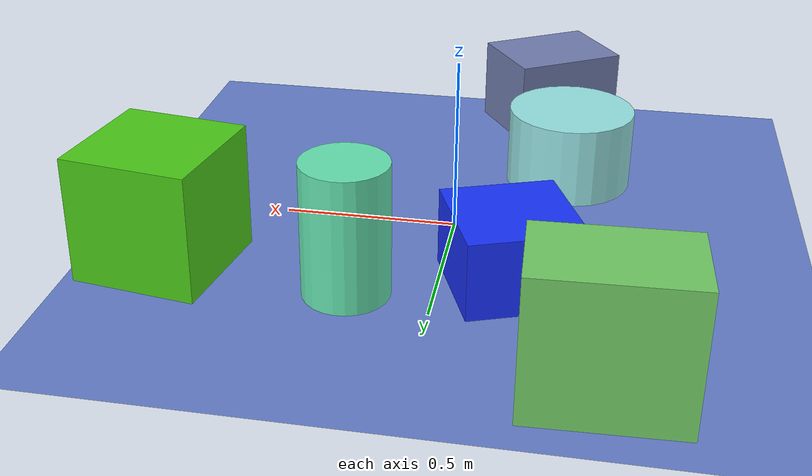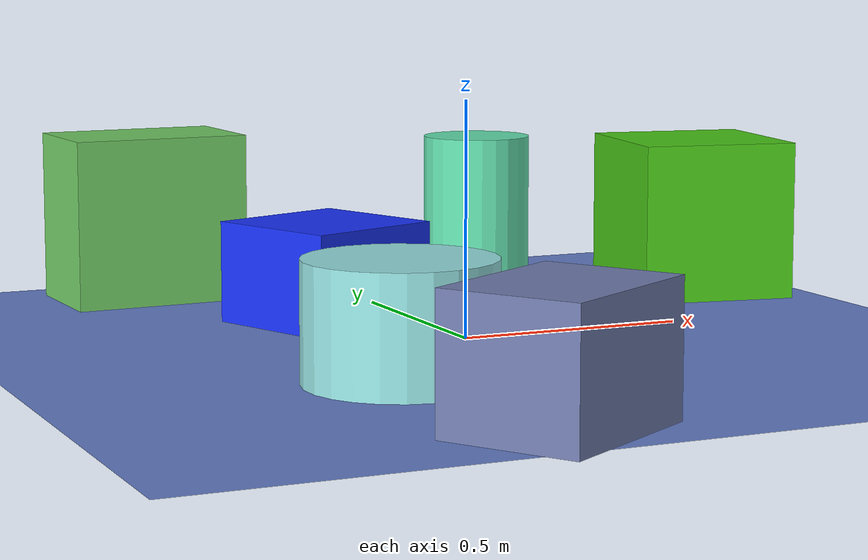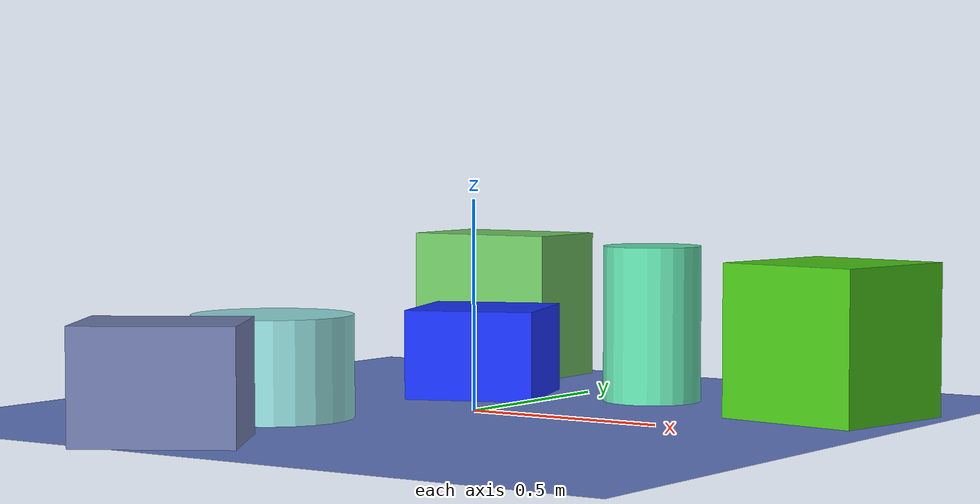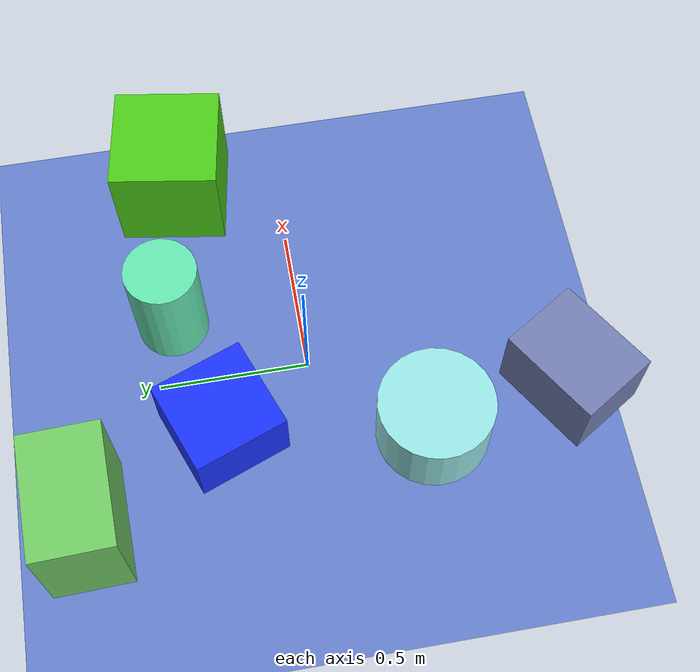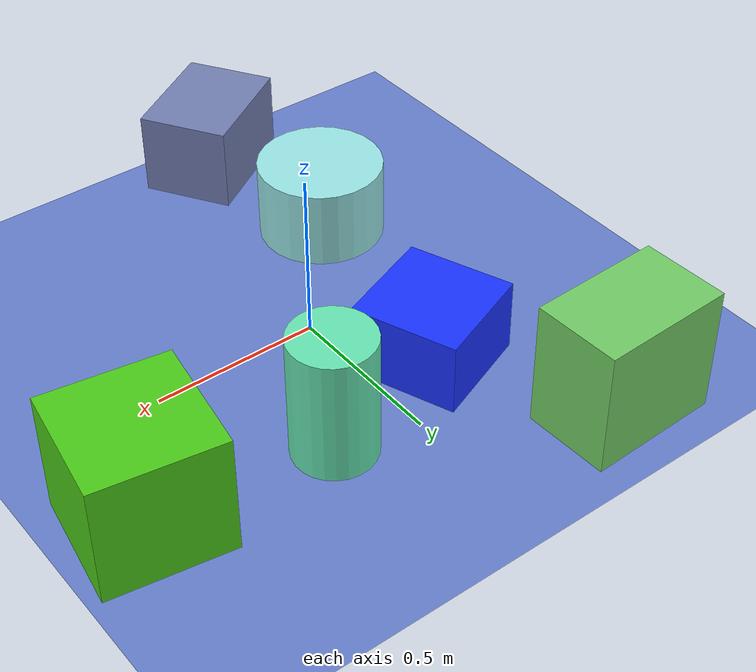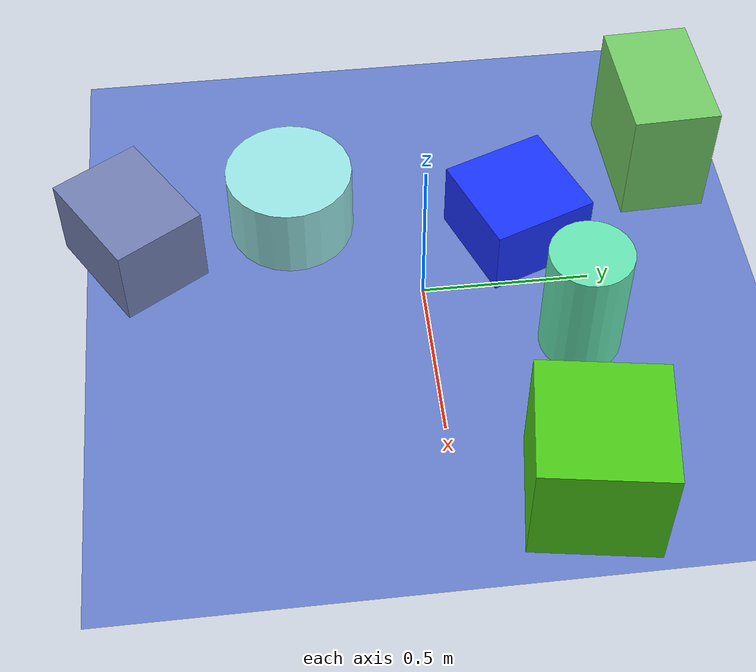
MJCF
<mujoco>
   <asset>
<texture type="skybox" builtin="gradient" rgb1="0.9 0.1 0.6" rgb2="0.3 0.4 1.0" width="500" height="500"/>
<texture name="checker_0" builtin="checker" rgb1="0.8 0.2 0.4" rgb2="0.1 0.8 1.0" width="500" height="500"/>
<texture name="flat_1" builtin="flat" rgb1="0.3 0.8 0.1" rgb2="0.3 0.8 0.1"  width="500" height="500"/>
<texture name="checker_2" builtin="checker" rgb1="0.0 0.8 0.2" rgb2="0.9 0.8 0.6" width="500" height="500"/>
<texture name="flat_3" builtin="flat" rgb1="0.4 0.9 0.7" rgb2="0.4 0.9 0.7"  width="500" height="500"/>
<texture name="flat_4" builtin="flat" rgb1="0.6 0.9 0.9" rgb2="0.6 0.9 0.9"  width="500" height="500"/>
<texture name="flat_5" builtin="flat" rgb1="0.1 0.2 1.0" rgb2="0.1 0.2 1.0"  width="500" height="500"/><material name="checker_0_mat" reflectance="0.44524745322579895" texrepeat="10 10" texture="checker_0" texuniform="false" />
<material name="flat_1_mat" reflectance="0.4262541740566147" texture="flat_1" texuniform="true"/>
<material name="checker_2_mat" reflectance="0.19093559566475604" texrepeat="10 10" texture="checker_2" texuniform="false" />
<material name="flat_3_mat" reflectance="0.6763502983114064" texture="flat_3" texuniform="true"/>
<material name="flat_4_mat" reflectance="0.6484580808244332" texture="flat_4" texuniform="true"/>
<material name="flat_5_mat" reflectance="0.09558879979645274" texture="flat_5" texuniform="true"/>
   </asset>

   <worldbody>
     <geom type="plane" size="1 1 0.1" rgba="0.4 0.5 0.8 1" />
<light pos="-0.9858167476839328 -0.289573193195225 2" dir="0 0 -1" cutoff="90" diffuse="1 1 1" specular="1 1 1"/>
<geom type="box" pos="-0.22 -0.85 0.13" size="0.18 0.14 0.13" material="checker_0_mat" euler="0 0 32" />
<geom type="box" pos="0.76 0.36 0.18" size="0.18 0.18 0.18" material="flat_1_mat" euler="0 0 81" />
<geom type="box" pos="-0.45 0.78 0.19" size="0.2 0.13 0.19" material="checker_2_mat" euler="0 0 2" />
<geom type="cylinder" pos="0.23 0.43 0.19" size="0.12 0.19 0.19" material="flat_3_mat" euler="0 0 71" />
<geom type="cylinder" pos="-0.31 -0.37 0.12" size="0.19 0.12 0.12" material="flat_4_mat" euler="0 0 25" />
<geom type="box" pos="-0.19 0.31 0.11" size="0.16 0.16 0.11" material="flat_5_mat" euler="0 0 21" /><camera euler="60 0 180" fovy="60" name="camera1" pos="-0.2 -1.5 1"></camera>   </worldbody>
   <visual>
      <headlight diffuse="0.7 0.7 0.7"/>
   </visual>
</mujoco>
